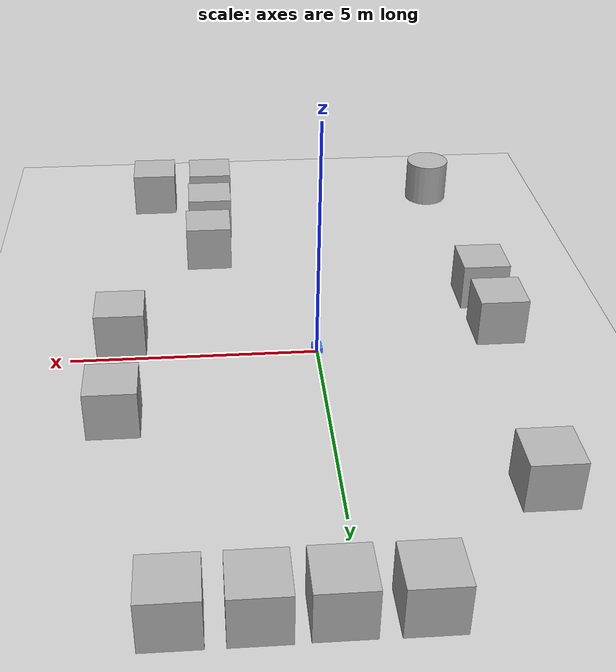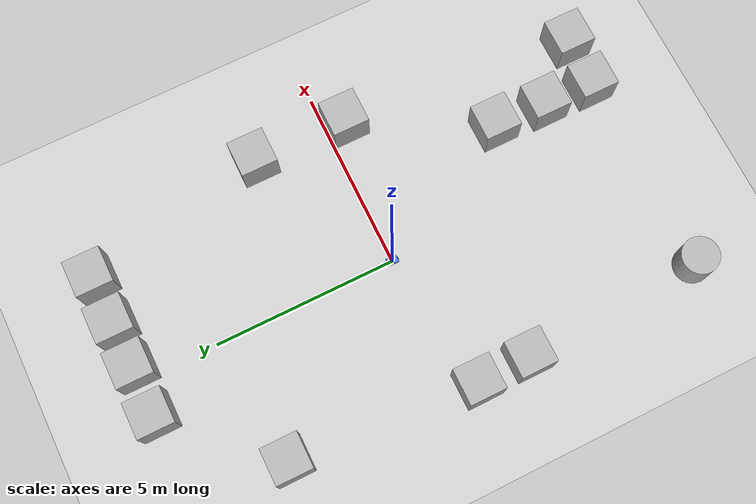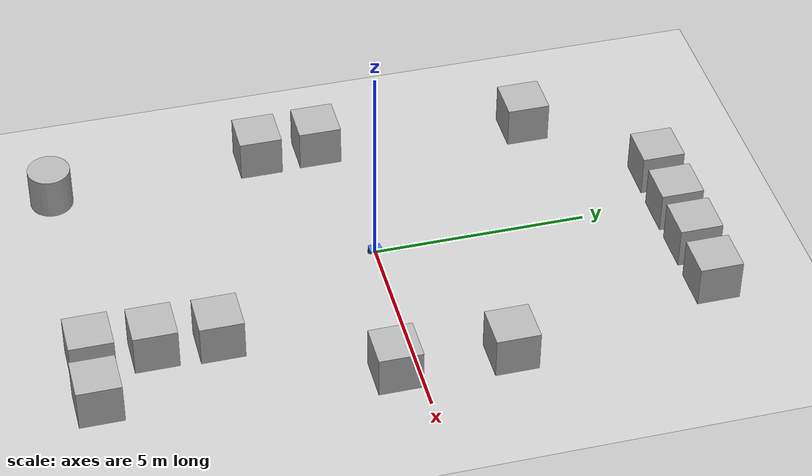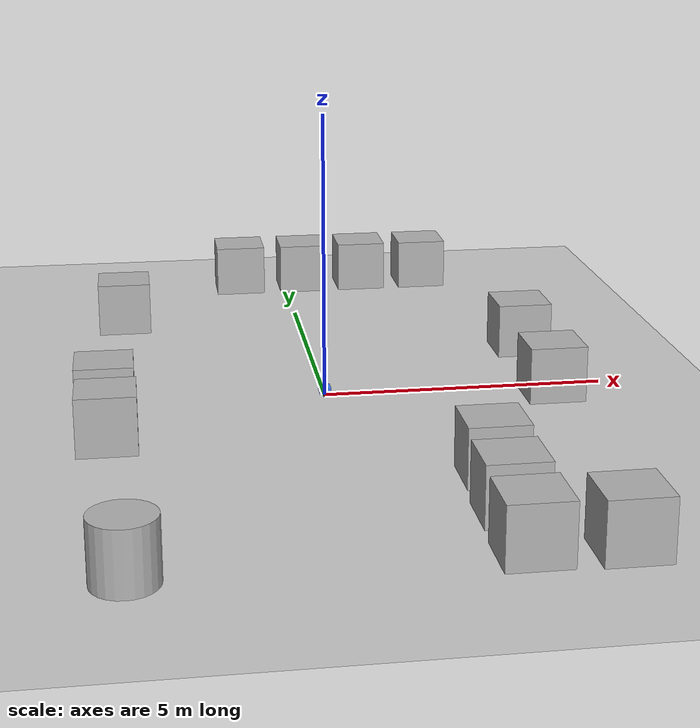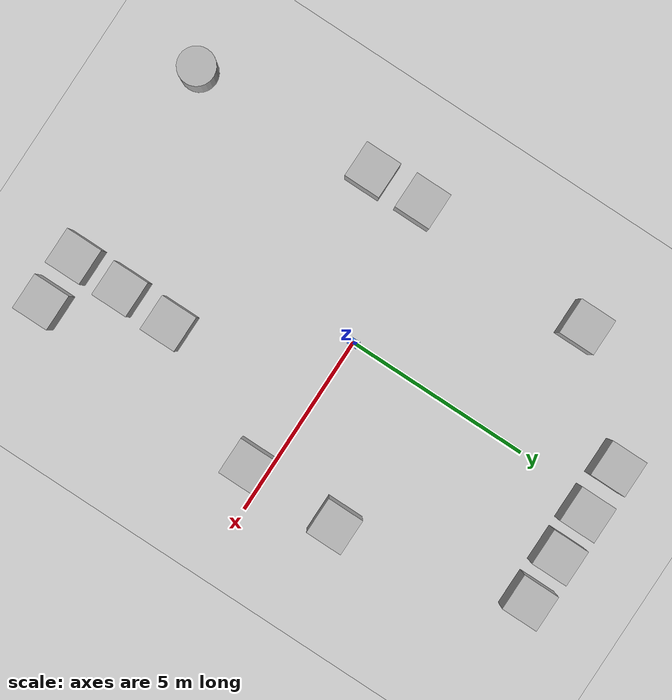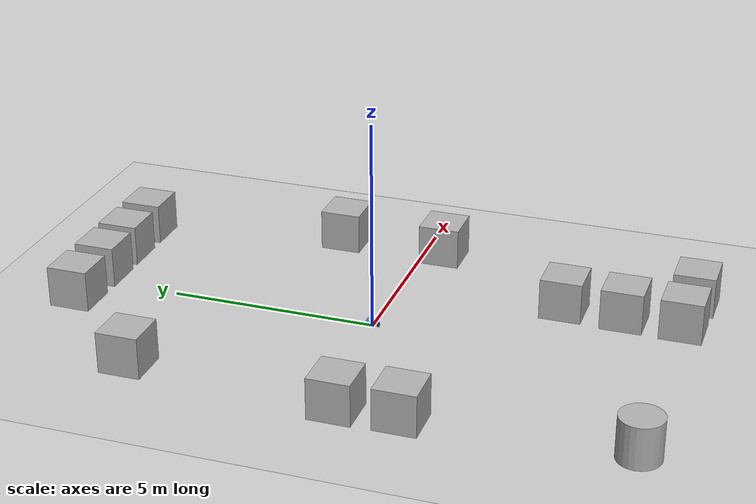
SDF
<sdf version="1.10">
 <world name="empty">
  <physics name="1ms" type="ignored">
   <max_step_size>0.001</max_step_size>
   <real_time_factor>1</real_time_factor>
   <real_time_update_rate>1000</real_time_update_rate>
  </physics>
  <plugin name="gz::sim::systems::Physics" filename="gz-sim-physics-system"/>
  <plugin name="gz::sim::systems::UserCommands" filename="gz-sim-user-commands-system"/>
  <plugin name="gz::sim::systems::SceneBroadcaster" filename="gz-sim-scene-broadcaster-system"/>
  <plugin name="gz::sim::systems::Contact" filename="gz-sim-contact-system"/>
  <plugin name="gz::sim::systems::Sensors" filename="gz-sim-sensors-system">
   <render_engine>ogre2</render_engine>
  </plugin>
  <plugin name="gz::sim::systems::Imu" filename="gz-sim-imu-system"/>
  <gravity>0 0 -9.8000000000000007</gravity>
  <magnetic_field>5.5644999999999998e-06 2.2875799999999999e-05 -4.2388400000000002e-05</magnetic_field>
  <atmosphere type="adiabatic"/>
  <scene>
   <ambient>0.400000006 0.400000006 0.400000006 1</ambient>
   <background>0.699999988 0.699999988 0.699999988 1</background>
   <shadows>true</shadows>
  </scene>
  <model name="ground_plane">
   <static>true</static>
   <link name="link">
    <collision name="collision">
     <geometry><plane><normal>0 0 1</normal><size>100 100</size></plane></geometry>
    </collision>
    <visual name="visual">
     <geometry><plane><normal>0 0 1</normal><size>100 100</size></plane></geometry>
     <material>
      <ambient>0.800000012 0.800000012 0.800000012 1</ambient>
      <diffuse>0.800000012 0.800000012 0.800000012 1</diffuse>
      <specular>0.800000012 0.800000012 0.800000012 1</specular>
     </material>
    </visual>
    <inertial>
     <mass>1</mass>
     <inertia><ixx>1</ixx><ixy>0</ixy><ixz>0</ixz><iyy>1</iyy><iyz>0</iyz><izz>1</izz></inertia>
    </inertial>
   </link>
  </model>
  <model name="diff-drive-bot">
   <link name="base_footprint">
    <inertial>
     <mass>3.1400000000000001</mass>
     <inertia>
      <ixx>0.024445912951167732</ixx>
      <ixy>0</ixy>
      <ixz>9.6680448501891943e-22</ixz>
      <iyy>0.01494591295116773</iyy>
      <iyz>0</iyz>
      <izz>0.029790000000000001</izz>
     </inertia>
    </inertial>
    <collision name="base_footprint_fixed_joint_lump__base_link_collision">
     <pose>0 0 0.10000000000000001 0 0 0</pose>
     <geometry><box><size>0.20000000000000001 0.28000000000000003 0.10000000000000001</size></box></geometry>
    </collision>
    <collision name="base_footprint_fixed_joint_lump__front_caster_wheel_link_collision_1">
     <pose>0.050000000000000003 0 0.025000000000000001 0 0 0</pose>
     <geometry><sphere><radius>0.025000000000000001</radius></sphere></geometry>
     <surface><friction><ode><mu>0.01</mu><mu2>0.01</mu2></ode></friction></surface>
    </collision>
    <collision name="base_footprint_fixed_joint_lump__rear_caster_wheel_link_collision_2">
     <pose>-0.050000000000000003 0 0.025000000000000001 0 0 0</pose>
     <geometry><sphere><radius>0.025000000000000001</radius></sphere></geometry>
     <surface><friction><ode><mu>0.01</mu><mu2>0.01</mu2></ode></friction></surface>
    </collision>
    <collision name="base_footprint_fixed_joint_lump__lidar_link_collision_3">
     <pose>0 0 0.20000000000000001 0 0 0</pose>
     <geometry>
      <cylinder><length>0.10000000000000001</length><radius>0.040000000000000001</radius></cylinder>
     </geometry>
    </collision>
    <visual name="base_footprint_fixed_joint_lump__base_link_visual">
     <pose>0 0 0.10000000000000001 0 0 0</pose>
     <geometry><box><size>0.20000000000000001 0.28000000000000003 0.10000000000000001</size></box></geometry>
     <material><diffuse>0.25 0.5 1 1</diffuse><ambient>0.25 0.5 1 1</ambient></material>
    </visual>
    <visual name="base_footprint_fixed_joint_lump__front_caster_wheel_link_visual_1">
     <pose>0.050000000000000003 0 0.025000000000000001 0 0 0</pose>
     <geometry><sphere><radius>0.025000000000000001</radius></sphere></geometry>
     <material>
      <diffuse>0.75000006 0.75000006 0.75000006 1</diffuse>
      <ambient>0.75000006 0.75000006 0.75000006 1</ambient>
     </material>
    </visual>
    <visual name="base_footprint_fixed_joint_lump__rear_caster_wheel_link_visual_2">
     <pose>-0.050000000000000003 0 0.025000000000000001 0 0 0</pose>
     <geometry><sphere><radius>0.025000000000000001</radius></sphere></geometry>
     <material>
      <diffuse>0.75000006 0.75000006 0.75000006 1</diffuse>
      <ambient>0.75000006 0.75000006 0.75000006 1</ambient>
     </material>
    </visual>
    <visual name="base_footprint_fixed_joint_lump__lidar_link_visual_3">
     <pose>0 0 0.20000000000000001 0 0 0</pose>
     <geometry>
      <cylinder><length>0.10000000000000001</length><radius>0.040000000000000001</radius></cylinder>
     </geometry>
     <material><diffuse>1 0.625 0 1</diffuse><ambient>1 0.625 0 1</ambient></material>
    </visual>
    <sensor name="lidar_sensor" type="gpu_lidar">
     <pose>0 0 0.20000000000000001 0 0 0</pose>
     <topic>scan</topic>
     <update_rate>10</update_rate>
     <enable_metrics>false</enable_metrics>
     <lidar>
      <scan>
       <horizontal>
        <samples>360</samples>
        <resolution>1</resolution>
        <min_angle>-3.1415899999999999</min_angle>
        <max_angle>3.1415899999999999</max_angle>
       </horizontal>
       <vertical>
        <samples>1</samples>
        <min_angle>0</min_angle>
        <max_angle>0</max_angle>
        <resolution>1</resolution>
       </vertical>
      </scan>
      <range><min>0.14999999999999999</min><max>8</max><resolution>0.01</resolution></range>
      <noise><type>gaussian</type><mean>0</mean><stddev>0.01</stddev></noise>
      <visibility_mask>4294967295</visibility_mask>
     </lidar>
    </sensor>
   </link>
   <joint name="base_to_left_wheel_joint" type="revolute">
    <pose>-1.3877787807814457e-17 0 -2.4286128663675299e-17 0 -5.3032230867953301e-34 0</pose>
    <parent>base_footprint</parent>
    <child>left_wheel_link</child>
    <axis>
     <xyz>0 1 0</xyz>
     <limit>
      <lower>-inf</lower>
      <upper>inf</upper>
      <effort>inf</effort>
      <velocity>inf</velocity>
      <stiffness>100000000</stiffness>
      <dissipation>1</dissipation>
     </limit>
     <dynamics>
      <spring_reference>0</spring_reference>
      <spring_stiffness>0</spring_stiffness>
      <damping>0</damping>
      <friction>0</friction>
     </dynamics>
    </axis>
   </joint>
   <link name="left_wheel_link">
    <pose>5.8823614736140656e-18 0.15299999999999986 0.049999999999999982 3.1415926535897931 1.1924561900300843 3.1415926535897931</pose>
    <inertial>
     <mass>0.12</mass>
     <inertia>
      <ixx>8.1760000000000017e-05</ixx>
      <ixy>0</ixy>
      <ixz>0</ixz>
      <iyy>0.00014999999999999999</iyy>
      <iyz>0</iyz>
      <izz>8.1760000000000017e-05</izz>
     </inertia>
    </inertial>
    <collision name="left_wheel_link_collision">
     <pose>0 0 0 1.5707963267948959 0 0</pose>
     <geometry>
      <cylinder><length>0.025999999999999999</length><radius>0.050000000000000003</radius></cylinder>
     </geometry>
     <surface>
      <contact><ode><kp>1000000</kp><kd>1</kd></ode></contact>
      <friction><ode><mu>1.5</mu><mu2>1.5</mu2></ode></friction>
     </surface>
    </collision>
    <visual name="left_wheel_link_visual">
     <pose>0 0 0 1.5707963267948959 0 0</pose>
     <geometry>
      <cylinder><length>0.025999999999999999</length><radius>0.050000000000000003</radius></cylinder>
     </geometry>
     <material><diffuse>0.125 0.125 0.125 1</diffuse><ambient>0.125 0.125 0.125 1</ambient></material>
    </visual>
   </link>
   <joint name="base_to_right_wheel_joint" type="revolute">
    <pose>6.9388939039072284e-18 0 -1.214306433183765e-17 0 -3.6186117904555434e-34 0</pose>
    <parent>base_footprint</parent>
    <child>right_wheel_link</child>
    <axis>
     <xyz>0 1 0</xyz>
     <limit>
      <lower>-inf</lower>
      <upper>inf</upper>
      <effort>inf</effort>
      <velocity>inf</velocity>
      <stiffness>100000000</stiffness>
      <dissipation>1</dissipation>
     </limit>
     <dynamics>
      <spring_reference>0</spring_reference>
      <spring_stiffness>0</spring_stiffness>
      <damping>0</damping>
      <friction>0</friction>
     </dynamics>
    </axis>
   </joint>
   <link name="right_wheel_link">
    <pose>9.7386559214153132e-18 -0.15299999999999989 0.049999999999999954 3.1415926535897931 1.2588698506475435 3.1415926535897931</pose>
    <inertial>
     <mass>0.12</mass>
     <inertia>
      <ixx>8.1760000000000017e-05</ixx>
      <ixy>0</ixy>
      <ixz>0</ixz>
      <iyy>0.00014999999999999999</iyy>
      <iyz>0</iyz>
      <izz>8.1760000000000017e-05</izz>
     </inertia>
    </inertial>
    <collision name="right_wheel_link_collision">
     <pose>0 0 0 1.5707963267948959 0 0</pose>
     <geometry>
      <cylinder><length>0.025999999999999999</length><radius>0.050000000000000003</radius></cylinder>
     </geometry>
     <surface>
      <contact><ode><kp>1000000</kp><kd>1</kd></ode></contact>
      <friction><ode><mu>1.5</mu><mu2>1.5</mu2></ode></friction>
     </surface>
    </collision>
    <visual name="right_wheel_link_visual">
     <pose>0 0 0 1.5707963267948959 0 0</pose>
     <geometry>
      <cylinder><length>0.025999999999999999</length><radius>0.050000000000000003</radius></cylinder>
     </geometry>
     <material><diffuse>0.125 0.125 0.125 1</diffuse><ambient>0.125 0.125 0.125 1</ambient></material>
    </visual>
   </link>
   <plugin name="gz_ros2_control::GazeboSimROS2ControlPlugin" filename="libgz_ros2_control-system.so">
    <parameters>/home/bangadmadhav/ros_projects/nav2-amr/ros2_ws/install/robot_bringup/share/robot_bringup/config/controllers.yaml</parameters>
   </plugin>
   <frame name="base_to_front_caster_wheel_joint" attached_to="base_link">
    <pose>0.050000000000000003 0 -0.025000000000000001 0 0 0</pose>
   </frame>
   <frame name="front_caster_wheel_link" attached_to="base_to_front_caster_wheel_joint"/>
   <frame name="base_to_rear_caster_wheel_joint" attached_to="base_link">
    <pose>-0.050000000000000003 0 -0.025000000000000001 0 0 0</pose>
   </frame>
   <frame name="rear_caster_wheel_link" attached_to="base_to_rear_caster_wheel_joint"/>
   <frame name="lidar_joint" attached_to="base_link"><pose>0 0 0.14999999999999999 0 0 0</pose></frame>
   <frame name="lidar_link" attached_to="lidar_joint"/>
   <frame name="base_to_footprint" attached_to="base_footprint">
    <pose>0 0 0.050000000000000003 0 0 0</pose>
   </frame>
   <frame name="base_link" attached_to="base_to_footprint"/>
   <pose>-6.0221294520134592e-23 2.061229072943844e-22 -8.6620510429333276e-11 3.3439215203106984e-21 2.3832491300303575e-20 -7.143212314862844e-22</pose>
   <static>false</static>
  </model>
  <model name="box">
   <pose>2.1043132491753633 -4.062245548405631 0.49999999961383335 2.2173168376473367e-21 -7.874254222518039e-21 -1.0220815815193421e-21</pose>
   <link name="box_link">
    <inertial>
     <inertia><ixx>0.16666</ixx><ixy>0</ixy><ixz>0</ixz><iyy>0.16666</iyy><iyz>0</iyz><izz>0.16666</izz></inertia>
     <mass>1</mass>
    </inertial>
    <collision name="box_collision"><geometry><box><size>1 1 1</size></box></geometry></collision>
    <visual name="box_visual">
     <geometry><box><size>1 1 1</size></box></geometry>
     <material>
      <ambient>0.300000012 0.300000012 0.300000012 1</ambient>
      <diffuse>0.699999988 0.699999988 0.699999988 1</diffuse>
      <specular>1 1 1 1</specular>
     </material>
    </visual>
   </link>
   <static>false</static>
  </model>
  <model name="cylinder">
   <pose>-3.5293640432081261 -6.9421882413476128 0.49999944330790008 -6.060487416560336e-21 6.7803504527240404e-20 5.9195822013363546e-21</pose>
   <link name="cylinder_link">
    <inertial>
     <inertia>
      <ixx>0.14580000000000001</ixx>
      <ixy>0</ixy>
      <ixz>0</ixz>
      <iyy>0.14580000000000001</iyy>
      <iyz>0</iyz>
      <izz>0.125</izz>
     </inertia>
     <mass>1</mass>
    </inertial>
    <collision name="cylinder_collision">
     <geometry><cylinder><radius>0.5</radius><length>1</length></cylinder></geometry>
    </collision>
    <visual name="cylinder_visual">
     <geometry><cylinder><radius>0.5</radius><length>1</length></cylinder></geometry>
     <material>
      <ambient>0.300000012 0.300000012 0.300000012 1</ambient>
      <diffuse>0.699999988 0.699999988 0.699999988 1</diffuse>
      <specular>1 1 1 1</specular>
     </material>
    </visual>
   </link>
   <static>false</static>
  </model>
  <model name="box_0">
   <pose>4.0153260231018066 2.0732800960540771 0.49999999980497606 6.4161747848937477e-22 -3.7891236528671386e-21 -1.4224602295442765e-21</pose>
   <link name="box_link">
    <inertial>
     <inertia><ixx>0.16666</ixx><ixy>0</ixy><ixz>0</ixz><iyy>0.16666</iyy><iyz>0</iyz><izz>0.16666</izz></inertia>
     <mass>1</mass>
    </inertial>
    <collision name="box_collision"><geometry><box><size>1 1 1</size></box></geometry></collision>
    <visual name="box_visual">
     <geometry><box><size>1 1 1</size></box></geometry>
     <material>
      <ambient>0.300000012 0.300000012 0.300000012 1</ambient>
      <diffuse>0.699999988 0.699999988 0.699999988 1</diffuse>
      <specular>1 1 1 1</specular>
     </material>
    </visual>
   </link>
   <static>false</static>
  </model>
  <model name="box_1">
   <pose>-3.4693177423851069 4.5488528938618709 0.49999999961383335 2.2173168376473367e-21 -7.874254222518039e-21 -1.0220815815193421e-21</pose>
   <link name="box_link">
    <inertial>
     <inertia><ixx>0.16666</ixx><ixy>0</ixy><ixz>0</ixz><iyy>0.16666</iyy><iyz>0</iyz><izz>0.16666</izz></inertia>
     <mass>1</mass>
    </inertial>
    <collision name="box_collision"><geometry><box><size>1 1 1</size></box></geometry></collision>
    <visual name="box_visual">
     <geometry><box><size>1 1 1</size></box></geometry>
     <material>
      <ambient>0.300000012 0.300000012 0.300000012 1</ambient>
      <diffuse>0.699999988 0.699999988 0.699999988 1</diffuse>
      <specular>1 1 1 1</specular>
     </material>
    </visual>
   </link>
   <static>false</static>
  </model>
  <model name="box_2">
   <pose>0.36498421430587769 7.0897002220153809 0.49999999980497606 1.5282380184882812e-20 -1.1848821427094392e-20 -1.2445356815215727e-22</pose>
   <link name="box_link">
    <inertial>
     <inertia><ixx>0.16666</ixx><ixy>0</ixy><ixz>0</ixz><iyy>0.16666</iyy><iyz>0</iyz><izz>0.16666</izz></inertia>
     <mass>1</mass>
    </inertial>
    <collision name="box_collision"><geometry><box><size>1 1 1</size></box></geometry></collision>
    <visual name="box_visual">
     <geometry><box><size>1 1 1</size></box></geometry>
     <material>
      <ambient>0.300000012 0.300000012 0.300000012 1</ambient>
      <diffuse>0.699999988 0.699999988 0.699999988 1</diffuse>
      <specular>1 1 1 1</specular>
     </material>
    </visual>
   </link>
   <static>false</static>
  </model>
  <model name="box_3">
   <pose>3.9696661569093501 -0.53197440774561255 0.49999999980497606 -1.2983313967284496e-22 1.7665415001559131e-21 7.4418389397464927e-22</pose>
   <link name="box_link">
    <inertial>
     <inertia><ixx>0.16666</ixx><ixy>0</ixy><ixz>0</ixz><iyy>0.16666</iyy><iyz>0</iyz><izz>0.16666</izz></inertia>
     <mass>1</mass>
    </inertial>
    <collision name="box_collision"><geometry><box><size>1 1 1</size></box></geometry></collision>
    <visual name="box_visual">
     <geometry><box><size>1 1 1</size></box></geometry>
     <material>
      <ambient>0.300000012 0.300000012 0.300000012 1</ambient>
      <diffuse>0.699999988 0.699999988 0.699999988 1</diffuse>
      <specular>1 1 1 1</specular>
     </material>
    </visual>
   </link>
   <static>false</static>
  </model>
  <model name="box_4">
   <pose>1.6181659698486328 7.1010198593139648 0.49999999980497606 1.4765625807577881e-20 -7.3173255572240675e-21 -1.0040576639327147e-21</pose>
   <link name="box_link">
    <inertial>
     <inertia><ixx>0.16666</ixx><ixy>0</ixy><ixz>0</ixz><iyy>0.16666</iyy><iyz>0</iyz><izz>0.16666</izz></inertia>
     <mass>1</mass>
    </inertial>
    <collision name="box_collision"><geometry><box><size>1 1 1</size></box></geometry></collision>
    <visual name="box_visual">
     <geometry><box><size>1 1 1</size></box></geometry>
     <material>
      <ambient>0.300000012 0.300000012 0.300000012 1</ambient>
      <diffuse>0.699999988 0.699999988 0.699999988 1</diffuse>
      <specular>1 1 1 1</specular>
     </material>
    </visual>
   </link>
   <static>false</static>
  </model>
  <model name="box_5">
   <pose>2.0440408005197317 -5.514430727292293 0.49999999980497606 1.0048033485058014e-21 -2.4640853465547739e-21 -3.9210766489770922e-22</pose>
   <link name="box_link">
    <inertial>
     <inertia><ixx>0.16666</ixx><ixy>0</ixy><ixz>0</ixz><iyy>0.16666</iyy><iyz>0</iyz><izz>0.16666</izz></inertia>
     <mass>1</mass>
    </inertial>
    <collision name="box_collision"><geometry><box><size>1 1 1</size></box></geometry></collision>
    <visual name="box_visual">
     <geometry><box><size>1 1 1</size></box></geometry>
     <material>
      <ambient>0.300000012 0.300000012 0.300000012 1</ambient>
      <diffuse>0.699999988 0.699999988 0.699999988 1</diffuse>
      <specular>1 1 1 1</specular>
     </material>
    </visual>
   </link>
   <static>false</static>
  </model>
  <model name="box_6">
   <pose>2.0082449868233652 -6.9027803127018821 0.49999999980497606 1.0048033485058014e-21 -2.4640853465547739e-21 -3.9210766489770922e-22</pose>
   <link name="box_link">
    <inertial>
     <inertia><ixx>0.16666</ixx><ixy>0</ixy><ixz>0</ixz><iyy>0.16666</iyy><iyz>0</iyz><izz>0.16666</izz></inertia>
     <mass>1</mass>
    </inertial>
    <collision name="box_collision"><geometry><box><size>1 1 1</size></box></geometry></collision>
    <visual name="box_visual">
     <geometry><box><size>1 1 1</size></box></geometry>
     <material>
      <ambient>0.300000012 0.300000012 0.300000012 1</ambient>
      <diffuse>0.699999988 0.699999988 0.699999988 1</diffuse>
      <specular>1 1 1 1</specular>
     </material>
    </visual>
   </link>
   <static>false</static>
  </model>
  <model name="box_7">
   <pose>3.3801522254943848 -6.9534201622009277 0.49999999980497606 5.7155621579102632e-21 -6.5691289902797882e-21 -1.948037898629101e-22</pose>
   <link name="box_link">
    <inertial>
     <inertia><ixx>0.16666</ixx><ixy>0</ixy><ixz>0</ixz><iyy>0.16666</iyy><iyz>0</iyz><izz>0.16666</izz></inertia>
     <mass>1</mass>
    </inertial>
    <collision name="box_collision"><geometry><box><size>1 1 1</size></box></geometry></collision>
    <visual name="box_visual">
     <geometry><box><size>1 1 1</size></box></geometry>
     <material>
      <ambient>0.300000012 0.300000012 0.300000012 1</ambient>
      <diffuse>0.699999988 0.699999988 0.699999988 1</diffuse>
      <specular>1 1 1 1</specular>
     </material>
    </visual>
   </link>
   <static>false</static>
  </model>
  <model name="box_8">
   <pose>-3.8261153021218912 -0.50421541274277959 0.49999999980497606 4.510122445939706e-21 -4.811254041875492e-21 7.5000850150618032e-22</pose>
   <link name="box_link">
    <inertial>
     <inertia><ixx>0.16666</ixx><ixy>0</ixy><ixz>0</ixz><iyy>0.16666</iyy><iyz>0</iyz><izz>0.16666</izz></inertia>
     <mass>1</mass>
    </inertial>
    <collision name="box_collision"><geometry><box><size>1 1 1</size></box></geometry></collision>
    <visual name="box_visual">
     <geometry><box><size>1 1 1</size></box></geometry>
     <material>
      <ambient>0.300000012 0.300000012 0.300000012 1</ambient>
      <diffuse>0.699999988 0.699999988 0.699999988 1</diffuse>
      <specular>1 1 1 1</specular>
     </material>
    </visual>
   </link>
   <static>false</static>
  </model>
  <model name="box_9">
   <pose>-3.7912817001342773 -1.9467400312423706 0.49999999980497606 6.7760579306190881e-21 -1.1067267553950163e-20 4.0071036179897783e-22</pose>
   <link name="box_link">
    <inertial>
     <inertia><ixx>0.16666</ixx><ixy>0</ixy><ixz>0</ixz><iyy>0.16666</iyy><iyz>0</iyz><izz>0.16666</izz></inertia>
     <mass>1</mass>
    </inertial>
    <collision name="box_collision"><geometry><box><size>1 1 1</size></box></geometry></collision>
    <visual name="box_visual">
     <geometry><box><size>1 1 1</size></box></geometry>
     <material>
      <ambient>0.300000012 0.300000012 0.300000012 1</ambient>
      <diffuse>0.699999988 0.699999988 0.699999988 1</diffuse>
      <specular>1 1 1 1</specular>
     </material>
    </visual>
   </link>
   <static>false</static>
  </model>
  <model name="box_10">
   <pose>2.941514305700633 7.0999967465121729 0.49999999980497606 1.0048033485058014e-21 -2.4640853465547739e-21 -3.9210766489770922e-22</pose>
   <link name="box_link">
    <inertial>
     <inertia><ixx>0.16666</ixx><ixy>0</ixy><ixz>0</ixz><iyy>0.16666</iyy><iyz>0</iyz><izz>0.16666</izz></inertia>
     <mass>1</mass>
    </inertial>
    <collision name="box_collision"><geometry><box><size>1 1 1</size></box></geometry></collision>
    <visual name="box_visual">
     <geometry><box><size>1 1 1</size></box></geometry>
     <material>
      <ambient>0.300000012 0.300000012 0.300000012 1</ambient>
      <diffuse>0.699999988 0.699999988 0.699999988 1</diffuse>
      <specular>1 1 1 1</specular>
     </material>
    </visual>
   </link>
   <static>false</static>
  </model>
  <model name="box_11">
   <pose>-0.98741772057155641 7.1000657543445156 0.49999999980497606 1.0048033485058014e-21 -2.4640853465547739e-21 -3.9210766489770922e-22</pose>
   <link name="box_link">
    <inertial>
     <inertia><ixx>0.16666</ixx><ixy>0</ixy><ixz>0</ixz><iyy>0.16666</iyy><iyz>0</iyz><izz>0.16666</izz></inertia>
     <mass>1</mass>
    </inertial>
    <collision name="box_collision"><geometry><box><size>1 1 1</size></box></geometry></collision>
    <visual name="box_visual">
     <geometry><box><size>1 1 1</size></box></geometry>
     <material>
      <ambient>0.300000012 0.300000012 0.300000012 1</ambient>
      <diffuse>0.699999988 0.699999988 0.699999988 1</diffuse>
      <specular>1 1 1 1</specular>
     </material>
    </visual>
   </link>
   <static>false</static>
  </model>
  <light name="sun" type="directional">
   <pose>0 0 10 0 0 0</pose>
   <intensity>1</intensity>
   <direction>-0.5 0.10000000000000001 -0.90000000000000002</direction>
   <diffuse>0.800000012 0.800000012 0.800000012 1</diffuse>
   <specular>0.200000003 0.200000003 0.200000003 1</specular>
   <attenuation>
    <range>1000</range>
    <linear>0.01</linear>
    <constant>0.90000000000000002</constant>
    <quadratic>0.001</quadratic>
   </attenuation>
   <spot><inner_angle>0</inner_angle><outer_angle>0</outer_angle><falloff>0</falloff></spot>
  </light>
 </world>
</sdf>
